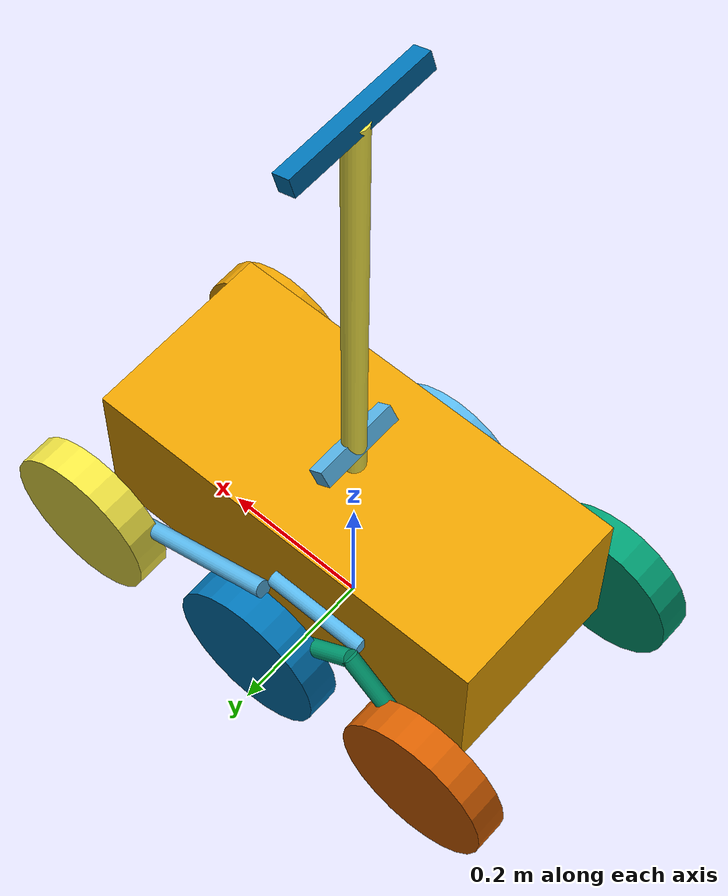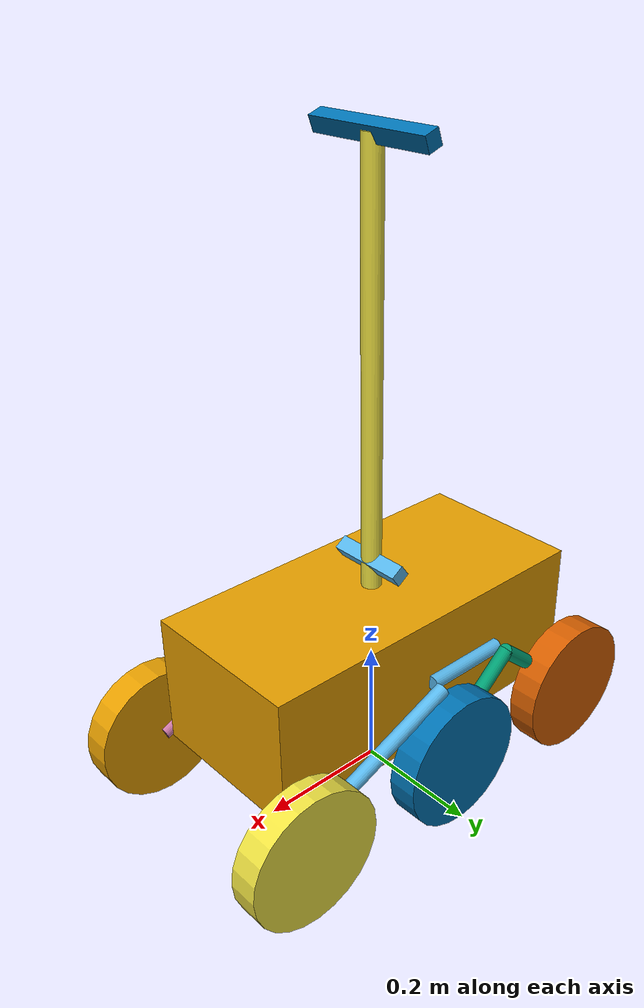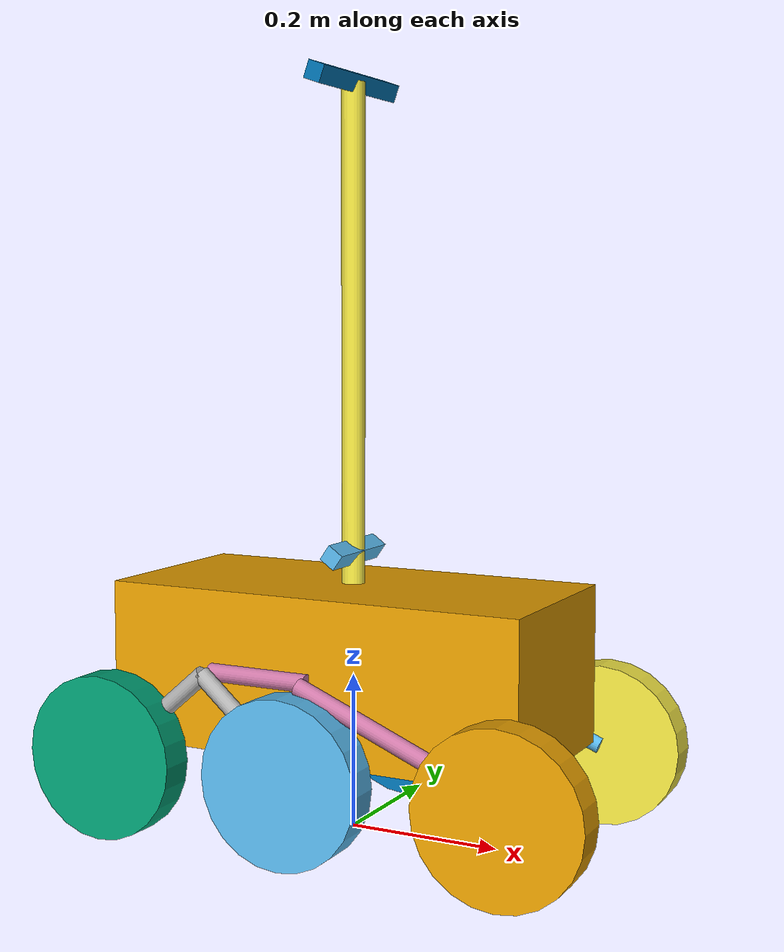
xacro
<?xml version="1.0" ?>
<robot xmlns:xacro="http://www.ros.org/wiki/xacro" name="ares_g">
  <link name="base_link">
    <inertial>
      <origin xyz="0.0 0.0 0.2175" rpy="0 0 0"/>
      <mass value="17.8"/>
      <inertia ixx="0.1626104166666667" ixy="0.0" ixz="0.0" iyy="0.5275104166666668" iyz="0.0" izz="0.5654466666666668"/>
    </inertial>
    <visual>
      <origin xyz="0.0 0.0 0.2175" rpy="0.0 0.0 0.0"/>
      <geometry>
        <box size="0.56 0.26 0.20500000000000002"/>
      </geometry>
    </visual>
    <collision>
      <origin xyz="0.0 0.0 0.2175" rpy="0.0 0.0 0.0"/>
      <geometry>
        <box size="0.56 0.26 0.20500000000000002"/>
      </geometry>
    </collision>
  </link>
  <link name="rocker_left">
    <inertial>
      <origin xyz="0.0 0.0 0.0" rpy="0 0 0"/>
      <mass value="0.6"/>
      <inertia ixx="0.0" ixy="0.0" ixz="0.0" iyy="0.004433650000000002" iyz="0.0" izz="0.004433650000000002"/>
    </inertial>
    <visual>
      <origin xyz="0.1365 0.01999999999999999 -0.056" rpy="0.0 1.9601130486280374 0.0"/>
      <geometry>
        <cylinder radius="0.011249999999999996" length="0.29778012022295913"/>
      </geometry>
    </visual>
    <visual>
      <origin xyz="-0.0685 0.0 0.0" rpy="0.0 -1.5707963267948966 0.0"/>
      <geometry>
        <cylinder radius="0.011249999999999996" length="0.137"/>
      </geometry>
    </visual>
  </link>
  <joint name="rocker_left_joint" type="continuous">
    <parent link="base_link"/>
    <child link="rocker_left"/>
    <origin xyz="0.007 0.135 0.217" rpy="0.0 0.0 0.0"/>
    <axis xyz="0.0 1.0 0.0"/>
  </joint>
  <link name="bogie_left">
    <inertial>
      <origin xyz="0.0 0.0 0.0" rpy="0 0 0"/>
      <mass value="0.45"/>
      <inertia ixx="0.0" ixy="0.0" ixz="0.0" iyy="0.0025350000000000004" iyz="0.0" izz="0.0025350000000000004"/>
    </inertial>
    <visual>
      <origin xyz="0.065 0.01999999999999999 -0.056" rpy="0.0 2.2819510385407638 0.0"/>
      <geometry>
        <cylinder radius="0.011249999999999996" length="0.17619307591389624"/>
      </geometry>
    </visual>
    <visual>
      <origin xyz="-0.065 0.01999999999999999 -0.056" rpy="0.0 4.001234268638823 0.0"/>
      <geometry>
        <cylinder radius="0.011249999999999996" length="0.17619307591389624"/>
      </geometry>
    </visual>
  </link>
  <joint name="bogie_left_joint" type="continuous">
    <parent link="rocker_left"/>
    <child link="bogie_left"/>
    <origin xyz="-0.137 0.0 0.0" rpy="0.0 0.0 0.0"/>
    <axis xyz="0.0 1.0 0.0"/>
  </joint>
  <link name="wheel_front_left">
    <inertial>
      <origin xyz="0.0 0.0 0.0" rpy="0 0 0"/>
      <mass value="0.45"/>
      <inertia ixx="0.00131625" ixy="0.0" ixz="0.0" iyy="0.0024806249999999998" iyz="0.0" izz="0.00131625"/>
    </inertial>
    <visual>
      <origin xyz="0.0 0.0 0.0" rpy="1.5707963267948966 0.0 0.0"/>
      <geometry>
        <cylinder radius="0.105" length="0.044999999999999984"/>
      </geometry>
    </visual>
    <collision>
      <origin xyz="0.0 0.0 0.0" rpy="1.5707963267948966 0.0 0.0"/>
      <geometry>
        <cylinder radius="0.105" length="0.044999999999999984"/>
      </geometry>
    </collision>
  </link>
  <joint name="wheel_front_left_joint" type="continuous">
    <parent link="rocker_left"/>
    <child link="wheel_front_left"/>
    <origin xyz="0.273 0.03999999999999998 -0.112" rpy="0.0 0.0 0.0"/>
    <axis xyz="0.0 1.0 0.0"/>
  </joint>
  <link name="wheel_middle_left">
    <inertial>
      <origin xyz="0.0 0.0 0.0" rpy="0 0 0"/>
      <mass value="0.45"/>
      <inertia ixx="0.00131625" ixy="0.0" ixz="0.0" iyy="0.0024806249999999998" iyz="0.0" izz="0.00131625"/>
    </inertial>
    <visual>
      <origin xyz="0.0 0.0 0.0" rpy="1.5707963267948966 0.0 0.0"/>
      <geometry>
        <cylinder radius="0.105" length="0.044999999999999984"/>
      </geometry>
    </visual>
    <collision>
      <origin xyz="0.0 0.0 0.0" rpy="1.5707963267948966 0.0 0.0"/>
      <geometry>
        <cylinder radius="0.105" length="0.044999999999999984"/>
      </geometry>
    </collision>
  </link>
  <joint name="wheel_middle_left_joint" type="continuous">
    <parent link="bogie_left"/>
    <child link="wheel_middle_left"/>
    <origin xyz="0.13 0.03999999999999998 -0.112" rpy="0.0 0.0 0.0"/>
    <axis xyz="0.0 1.0 0.0"/>
  </joint>
  <link name="wheel_rear_left">
    <inertial>
      <origin xyz="0.0 0.0 0.0" rpy="0 0 0"/>
      <mass value="0.45"/>
      <inertia ixx="0.00131625" ixy="0.0" ixz="0.0" iyy="0.0024806249999999998" iyz="0.0" izz="0.00131625"/>
    </inertial>
    <visual>
      <origin xyz="0.0 0.0 0.0" rpy="1.5707963267948966 0.0 0.0"/>
      <geometry>
        <cylinder radius="0.105" length="0.044999999999999984"/>
      </geometry>
    </visual>
    <collision>
      <origin xyz="0.0 0.0 0.0" rpy="1.5707963267948966 0.0 0.0"/>
      <geometry>
        <cylinder radius="0.105" length="0.044999999999999984"/>
      </geometry>
    </collision>
  </link>
  <joint name="wheel_rear_left_joint" type="continuous">
    <parent link="bogie_left"/>
    <child link="wheel_rear_left"/>
    <origin xyz="-0.13 0.03999999999999998 -0.112" rpy="0.0 0.0 0.0"/>
    <axis xyz="0.0 1.0 0.0"/>
  </joint>
  <link name="rocker_right">
    <inertial>
      <origin xyz="0.0 0.0 0.0" rpy="0 0 0"/>
      <mass value="0.6"/>
      <inertia ixx="0.0" ixy="0.0" ixz="0.0" iyy="0.004433650000000002" iyz="0.0" izz="0.004433650000000002"/>
    </inertial>
    <visual>
      <origin xyz="0.1365 -0.01999999999999999 -0.056" rpy="0.0 1.9601130486280374 0.0"/>
      <geometry>
        <cylinder radius="0.011249999999999996" length="0.29778012022295913"/>
      </geometry>
    </visual>
    <visual>
      <origin xyz="-0.0685 0.0 0.0" rpy="0.0 -1.5707963267948966 0.0"/>
      <geometry>
        <cylinder radius="0.011249999999999996" length="0.137"/>
      </geometry>
    </visual>
  </link>
  <joint name="rocker_right_joint" type="continuous">
    <parent link="base_link"/>
    <child link="rocker_right"/>
    <origin xyz="0.007 -0.135 0.217" rpy="0.0 0.0 0.0"/>
    <axis xyz="0.0 1.0 0.0"/>
  </joint>
  <link name="bogie_right">
    <inertial>
      <origin xyz="0.0 0.0 0.0" rpy="0 0 0"/>
      <mass value="0.45"/>
      <inertia ixx="0.0" ixy="0.0" ixz="0.0" iyy="0.0025350000000000004" iyz="0.0" izz="0.0025350000000000004"/>
    </inertial>
    <visual>
      <origin xyz="0.065 -0.01999999999999999 -0.056" rpy="0.0 2.2819510385407638 0.0"/>
      <geometry>
        <cylinder radius="0.011249999999999996" length="0.17619307591389624"/>
      </geometry>
    </visual>
    <visual>
      <origin xyz="-0.065 -0.01999999999999999 -0.056" rpy="0.0 4.001234268638823 0.0"/>
      <geometry>
        <cylinder radius="0.011249999999999996" length="0.17619307591389624"/>
      </geometry>
    </visual>
  </link>
  <joint name="bogie_right_joint" type="continuous">
    <parent link="rocker_right"/>
    <child link="bogie_right"/>
    <origin xyz="-0.137 0.0 0.0" rpy="0.0 0.0 0.0"/>
    <axis xyz="0.0 1.0 0.0"/>
  </joint>
  <link name="wheel_front_right">
    <inertial>
      <origin xyz="0.0 0.0 0.0" rpy="0 0 0"/>
      <mass value="0.45"/>
      <inertia ixx="0.00131625" ixy="0.0" ixz="0.0" iyy="0.0024806249999999998" iyz="0.0" izz="0.00131625"/>
    </inertial>
    <visual>
      <origin xyz="0.0 0.0 0.0" rpy="1.5707963267948966 0.0 0.0"/>
      <geometry>
        <cylinder radius="0.105" length="0.044999999999999984"/>
      </geometry>
    </visual>
    <collision>
      <origin xyz="0.0 0.0 0.0" rpy="1.5707963267948966 0.0 0.0"/>
      <geometry>
        <cylinder radius="0.105" length="0.044999999999999984"/>
      </geometry>
    </collision>
  </link>
  <joint name="wheel_front_right_joint" type="continuous">
    <parent link="rocker_right"/>
    <child link="wheel_front_right"/>
    <origin xyz="0.273 -0.03999999999999998 -0.112" rpy="0.0 0.0 0.0"/>
    <axis xyz="0.0 1.0 0.0"/>
  </joint>
  <link name="wheel_middle_right">
    <inertial>
      <origin xyz="0.0 0.0 0.0" rpy="0 0 0"/>
      <mass value="0.45"/>
      <inertia ixx="0.00131625" ixy="0.0" ixz="0.0" iyy="0.0024806249999999998" iyz="0.0" izz="0.00131625"/>
    </inertial>
    <visual>
      <origin xyz="0.0 0.0 0.0" rpy="1.5707963267948966 0.0 0.0"/>
      <geometry>
        <cylinder radius="0.105" length="0.044999999999999984"/>
      </geometry>
    </visual>
    <collision>
      <origin xyz="0.0 0.0 0.0" rpy="1.5707963267948966 0.0 0.0"/>
      <geometry>
        <cylinder radius="0.105" length="0.044999999999999984"/>
      </geometry>
    </collision>
  </link>
  <joint name="wheel_middle_right_joint" type="continuous">
    <parent link="bogie_right"/>
    <child link="wheel_middle_right"/>
    <origin xyz="0.13 -0.03999999999999998 -0.112" rpy="0.0 0.0 0.0"/>
    <axis xyz="0.0 1.0 0.0"/>
  </joint>
  <link name="wheel_rear_right">
    <inertial>
      <origin xyz="0.0 0.0 0.0" rpy="0 0 0"/>
      <mass value="0.45"/>
      <inertia ixx="0.00131625" ixy="0.0" ixz="0.0" iyy="0.0024806249999999998" iyz="0.0" izz="0.00131625"/>
    </inertial>
    <visual>
      <origin xyz="0.0 0.0 0.0" rpy="1.5707963267948966 0.0 0.0"/>
      <geometry>
        <cylinder radius="0.105" length="0.044999999999999984"/>
      </geometry>
    </visual>
    <collision>
      <origin xyz="0.0 0.0 0.0" rpy="1.5707963267948966 0.0 0.0"/>
      <geometry>
        <cylinder radius="0.105" length="0.044999999999999984"/>
      </geometry>
    </collision>
  </link>
  <joint name="wheel_rear_right_joint" type="continuous">
    <parent link="bogie_right"/>
    <child link="wheel_rear_right"/>
    <origin xyz="-0.13 -0.03999999999999998 -0.112" rpy="0.0 0.0 0.0"/>
    <axis xyz="0.0 1.0 0.0"/>
  </joint>
  <link name="mast_link">
    <inertial>
      <origin xyz="0.0 0.0 0.31499999999999995" rpy="0 0 0"/>
      <mass value="0.35"/>
      <inertia ixx="0.011576249999999996" ixy="0.0" ixz="0.0" iyy="0.011576249999999996" iyz="0.0" izz="0.0"/>
    </inertial>
    <visual>
      <origin xyz="0.0 0.0 0.31499999999999995" rpy="0.0 0.0 0.0"/>
      <geometry>
        <cylinder radius="0.014999999999999994" length="0.6299999999999999"/>
      </geometry>
    </visual>
  </link>
  <joint name="mast_joint" type="fixed">
    <parent link="base_link"/>
    <child link="mast_link"/>
    <origin xyz="0.0 0.0 0.32" rpy="0.0 0.0 0.0"/>
  </joint>
  <link name="mast_cam_mount">
    <inertial>
      <origin xyz="0.0 0.0 0.0" rpy="0 0 0"/>
      <mass value="0.15"/>
      <inertia ixx="0.0005253125000000001" ixy="0.0" ixz="0.0" iyy="5.062499999999996e-05" iyz="0.0" izz="0.0005253125000000001"/>
    </inertial>
    <visual>
      <origin xyz="0.0 0.0 0.0" rpy="0.0 0.0 0.0"/>
      <geometry>
        <box size="0.022499999999999992 0.2 0.022499999999999992"/>
      </geometry>
    </visual>
  </link>
  <joint name="mast_cam_mount_joint" type="fixed">
    <parent link="mast_link"/>
    <child link="mast_cam_mount"/>
    <origin xyz="0.0 0.0 0.6299999999999999" rpy="0.0 0.3490658503988659 0.0"/>
  </joint>
  <link name="mast_cam_link"/>
  <joint name="mast_cam_link_joint" type="fixed">
    <parent link="mast_cam_mount"/>
    <child link="mast_cam_link"/>
    <origin xyz="0.0 0.1 0.0" rpy="0.0 0.0 0.0"/>
  </joint>
  <link name="mast_cam_optical"/>
  <joint name="mast_cam_optical_joint" type="fixed">
    <parent link="mast_cam_link"/>
    <child link="mast_cam_optical"/>
    <origin xyz="0.0 0.0 0.0" rpy="-1.5707963267948966 0.0 -1.5707963267948966"/>
  </joint>
  <link name="mast_cam_right_link"/>
  <joint name="mast_cam_right_link_joint" type="fixed">
    <parent link="mast_cam_mount"/>
    <child link="mast_cam_right_link"/>
    <origin xyz="0.0 -0.1 0.0" rpy="0.0 0.0 0.0"/>
  </joint>
  <link name="mast_cam_right_optical"/>
  <joint name="mast_cam_right_optical_joint" type="fixed">
    <parent link="mast_cam_right_link"/>
    <child link="mast_cam_right_optical"/>
    <origin xyz="0.0 0.0 0.0" rpy="-1.5707963267948966 0.0 -1.5707963267948966"/>
  </joint>
  <link name="deck_cam_mount">
    <inertial>
      <origin xyz="0.0 0.0 0.0" rpy="0 0 0"/>
      <mass value="0.15"/>
      <inertia ixx="0.00020531249999999996" ixy="0.0" ixz="0.0" iyy="5.062499999999996e-05" iyz="0.0" izz="0.00020531249999999996"/>
    </inertial>
    <visual>
      <origin xyz="0.0 0.0 0.0" rpy="0.0 0.0 0.0"/>
      <geometry>
        <box size="0.022499999999999992 0.12 0.022499999999999992"/>
      </geometry>
    </visual>
  </link>
  <joint name="deck_cam_mount_joint" type="fixed">
    <parent link="base_link"/>
    <child link="deck_cam_mount"/>
    <origin xyz="0.0 0.0 0.36" rpy="0.0 0.6108652381980153 0.0"/>
  </joint>
  <link name="deck_cam_link"/>
  <joint name="deck_cam_link_joint" type="fixed">
    <parent link="deck_cam_mount"/>
    <child link="deck_cam_link"/>
    <origin xyz="0.0 0.06 0.0" rpy="0.0 0.0 0.0"/>
  </joint>
  <link name="deck_cam_optical"/>
  <joint name="deck_cam_optical_joint" type="fixed">
    <parent link="deck_cam_link"/>
    <child link="deck_cam_optical"/>
    <origin xyz="0.0 0.0 0.0" rpy="-1.5707963267948966 0.0 -1.5707963267948966"/>
  </joint>
  <link name="deck_cam_right_link"/>
  <joint name="deck_cam_right_link_joint" type="fixed">
    <parent link="deck_cam_mount"/>
    <child link="deck_cam_right_link"/>
    <origin xyz="0.0 -0.06 0.0" rpy="0.0 0.0 0.0"/>
  </joint>
  <link name="deck_cam_right_optical"/>
  <joint name="deck_cam_right_optical_joint" type="fixed">
    <parent link="deck_cam_right_link"/>
    <child link="deck_cam_right_optical"/>
    <origin xyz="0.0 0.0 0.0" rpy="-1.5707963267948966 0.0 -1.5707963267948966"/>
  </joint>
  <gazebo>
    <joint name="rocker_differential" type="gearbox">
      <parent>rocker_left</parent>
      <child>rocker_right</child>
      <gearbox_reference_body>base_link</gearbox_reference_body>
      <gearbox_ratio>-1.0</gearbox_ratio>
      <axis>
        <xyz>0 1 0</xyz>
      </axis>
      <axis2>
        <xyz>0 1 0</xyz>
      </axis2>
    </joint>
  </gazebo>
  <gazebo>
    <plugin filename="ares_differential" name="ares::sim::RockerDifferential">
      <left_joint>rocker_left_joint</left_joint>
      <right_joint>rocker_right_joint</right_joint>
    </plugin>
  </gazebo>
  <gazebo reference="wheel_front_left">
    <mu1>1.0</mu1>
    <mu2>1.0</mu2>
  </gazebo>
  <gazebo reference="wheel_middle_left">
    <mu1>1.0</mu1>
    <mu2>1.0</mu2>
  </gazebo>
  <gazebo reference="wheel_rear_left">
    <mu1>1.0</mu1>
    <mu2>1.0</mu2>
  </gazebo>
  <gazebo reference="wheel_front_right">
    <mu1>1.0</mu1>
    <mu2>1.0</mu2>
  </gazebo>
  <gazebo reference="wheel_middle_right">
    <mu1>1.0</mu1>
    <mu2>1.0</mu2>
  </gazebo>
  <gazebo reference="wheel_rear_right">
    <mu1>1.0</mu1>
    <mu2>1.0</mu2>
  </gazebo>
  <gazebo reference="mast_cam_link">
    <sensor name="mast_cam" type="camera">
      <always_on>1</always_on>
      <update_rate>5.0</update_rate>
      <visualize>false</visualize>
      <topic>/mast_cam/image_raw</topic>
      <camera>
        <horizontal_fov>1.5707963267948966</horizontal_fov>
        <image>
          <width>640</width>
          <height>360</height>
          <format>R8G8B8</format>
        </image>
        <clip>
          <near>0.105</near>
          <far>100</far>
        </clip>
        <lens>
          <intrinsics>
            <fx>320.00000000000006</fx>
            <fy>320.00000000000006</fy>
            <cx>320.0</cx>
            <cy>180.0</cy>
            <s>0</s>
          </intrinsics>
        </lens>
      </camera>
    </sensor>
  </gazebo>
  <gazebo reference="mast_cam_right_link">
    <sensor name="mast_cam_right" type="camera">
      <always_on>1</always_on>
      <update_rate>5.0</update_rate>
      <visualize>false</visualize>
      <topic>/mast_cam_right/image_raw</topic>
      <camera>
        <horizontal_fov>1.5707963267948966</horizontal_fov>
        <image>
          <width>640</width>
          <height>360</height>
          <format>R8G8B8</format>
        </image>
        <clip>
          <near>0.105</near>
          <far>100</far>
        </clip>
        <lens>
          <intrinsics>
            <fx>320.00000000000006</fx>
            <fy>320.00000000000006</fy>
            <cx>320.0</cx>
            <cy>180.0</cy>
            <s>0</s>
          </intrinsics>
        </lens>
      </camera>
    </sensor>
  </gazebo>
  <gazebo reference="deck_cam_link">
    <sensor name="deck_cam" type="camera">
      <always_on>1</always_on>
      <update_rate>5.0</update_rate>
      <visualize>false</visualize>
      <topic>/deck_cam/image_raw</topic>
      <camera>
        <horizontal_fov>1.5707963267948966</horizontal_fov>
        <image>
          <width>640</width>
          <height>360</height>
          <format>R8G8B8</format>
        </image>
        <clip>
          <near>0.105</near>
          <far>100</far>
        </clip>
        <lens>
          <intrinsics>
            <fx>320.00000000000006</fx>
            <fy>320.00000000000006</fy>
            <cx>320.0</cx>
            <cy>180.0</cy>
            <s>0</s>
          </intrinsics>
        </lens>
      </camera>
    </sensor>
  </gazebo>
  <gazebo reference="deck_cam_right_link">
    <sensor name="deck_cam_right" type="camera">
      <always_on>1</always_on>
      <update_rate>5.0</update_rate>
      <visualize>false</visualize>
      <topic>/deck_cam_right/image_raw</topic>
      <camera>
        <horizontal_fov>1.5707963267948966</horizontal_fov>
        <image>
          <width>640</width>
          <height>360</height>
          <format>R8G8B8</format>
        </image>
        <clip>
          <near>0.105</near>
          <far>100</far>
        </clip>
        <lens>
          <intrinsics>
            <fx>320.00000000000006</fx>
            <fy>320.00000000000006</fy>
            <cx>320.0</cx>
            <cy>180.0</cy>
            <s>0</s>
          </intrinsics>
        </lens>
      </camera>
    </sensor>
  </gazebo>
  <gazebo reference="mast_cam_link">
    <sensor name="ground_truth_depth" type="depth_camera">
      <always_on>1</always_on>
      <update_rate>5.0</update_rate>
      <topic>/sim/ground_truth/depth</topic>
      <camera>
        <horizontal_fov>1.5707963267948966</horizontal_fov>
        <image>
          <width>640</width>
          <height>360</height>
        </image>
        <clip>
          <near>0.105</near>
          <far>100</far>
        </clip>
      </camera>
    </sensor>
  </gazebo>
  <gazebo>
    <plugin filename="gz-sim-diff-drive-system" name="gz::sim::systems::DiffDrive">
      <left_joint>wheel_front_left_joint</left_joint>
      <left_joint>wheel_middle_left_joint</left_joint>
      <left_joint>wheel_rear_left_joint</left_joint>
      <right_joint>wheel_front_right_joint</right_joint>
      <right_joint>wheel_middle_right_joint</right_joint>
      <right_joint>wheel_rear_right_joint</right_joint>
      <wheel_separation>0.35</wheel_separation>
      <wheel_radius>0.105</wheel_radius>
      <odom_topic>odom</odom_topic>
      <frame_id>odom</frame_id>
      <child_frame_id>base_link</child_frame_id>
      <topic>cmd_vel</topic>
      <max_linear_velocity>1.111</max_linear_velocity>
      <max_linear_acceleration>1.0</max_linear_acceleration>
    </plugin>
  </gazebo>
</robot>
